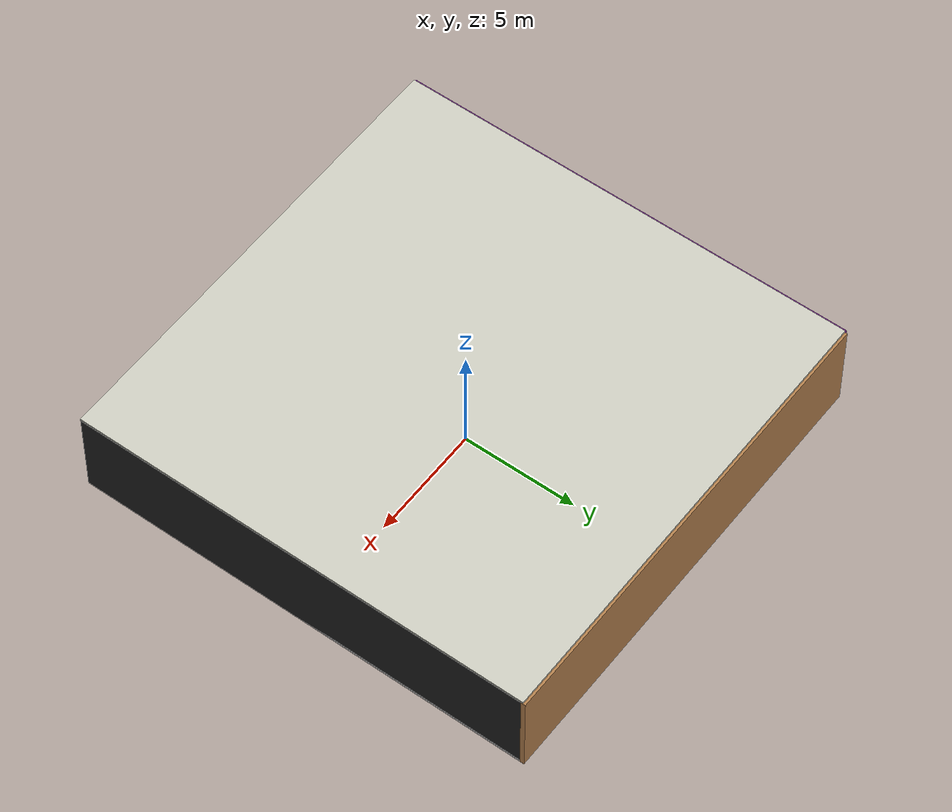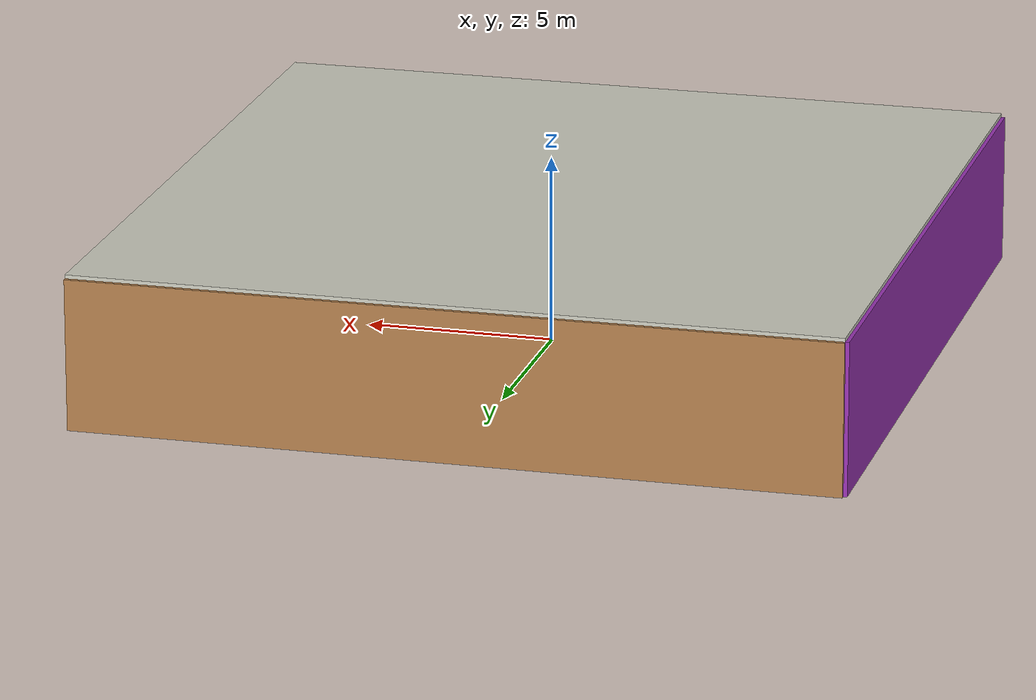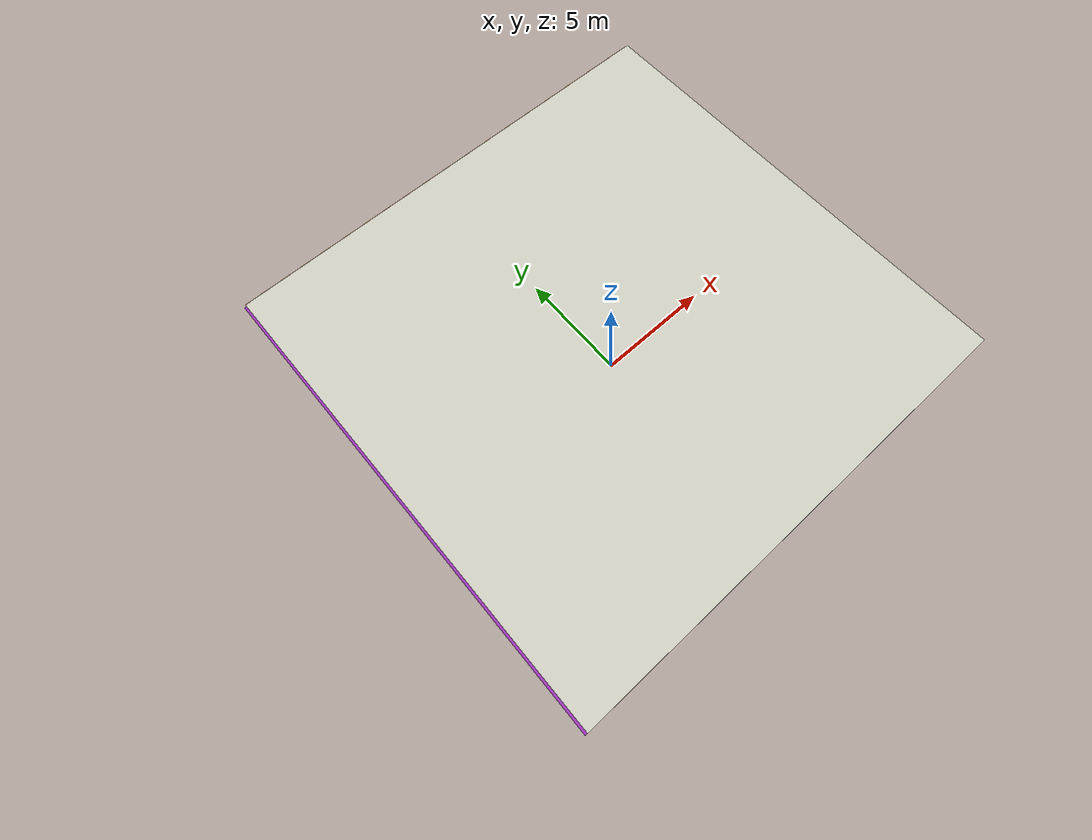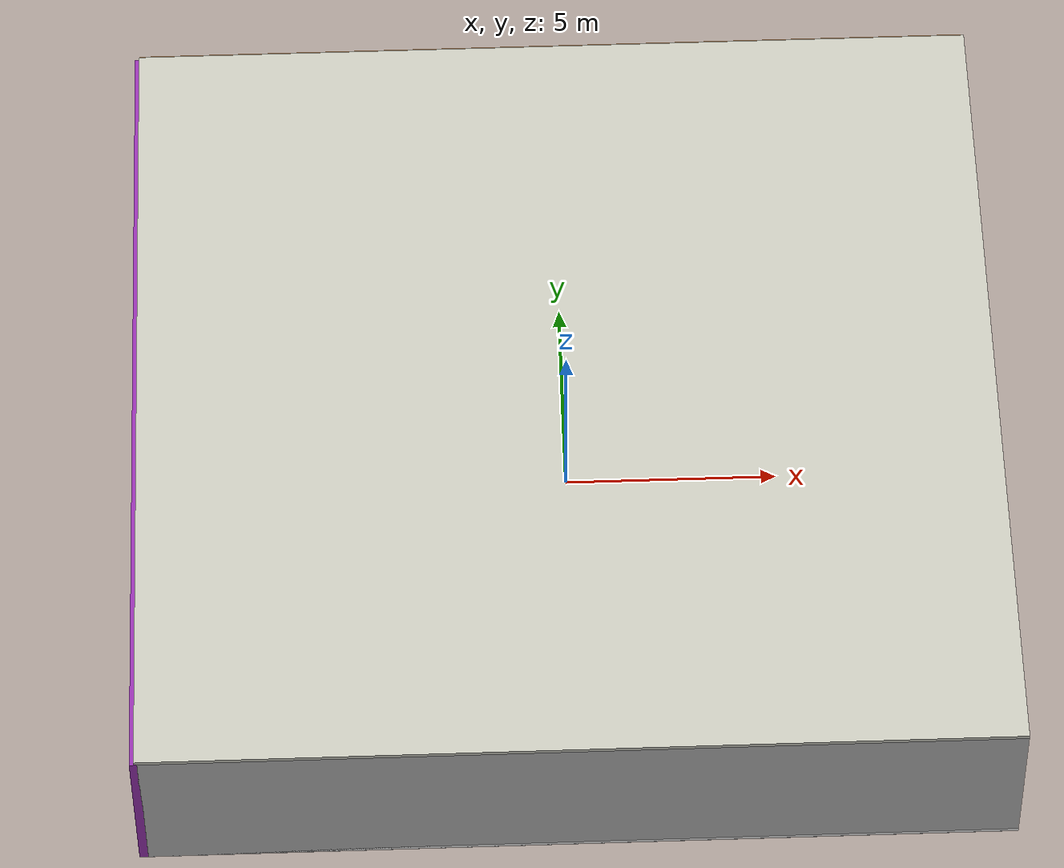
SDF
<sdf version="1.4">
 <world name="default">
  <physics type="ode">
   <max_step_size>0.001</max_step_size>
   <real_time_factor>1</real_time_factor>
   <real_time_update_rate>1000</real_time_update_rate>
   <gravity>0 0 -9.8</gravity>
  </physics>
  <scene><ambient>0.4 0.4 0.4 1</ambient><background>0.7 0.7 0.7 1</background><shadows>1</shadows></scene>
  <model name="Surrounding">
   <static>1</static>
   <link name="Ceiling">
    <collision name="Ceiling_Collision"><geometry><box><size>20 20 0.1</size></box></geometry></collision>
    <visual name="Ceiling_Visual">
     <geometry><box><size>20 20 0.1</size></box></geometry>
     <material>
      <script><uri>file://media/materials/scripts/gazebo.material</uri><name>Gazebo/PaintedWall</name></script>
     </material>
    </visual>
    <pose>0 0 4.05 0 0 0</pose>
   </link>
   <link name="Wall_South">
    <collision name="Wall_South_Collision">
     <geometry><box><size>20 0 4</size></box></geometry>
     <pose>0 0 2 0 -0 0</pose>
    </collision>
    <visual name="Wall_South_Visual">
     <pose>0 0 2 0 -0 0</pose>
     <geometry><box><size>20 0 4</size></box></geometry>
     <material>
      <script><uri>file://media/materials/scripts/gazebo.material</uri><name>Gazebo/Pioneer2Body</name></script>
     </material>
    </visual>
    <velocity_decay><linear>0</linear><angular>0</angular></velocity_decay>
    <pose>0 -10 0 0 -0 0</pose>
   </link>
   <link name="Wall_East">
    <collision name="Wall_21_Collision">
     <geometry><box><size>20 0 4</size></box></geometry>
     <pose>0 0 2 0 -0 0</pose>
    </collision>
    <visual name="Wall_21_Visual">
     <pose>0 0 2 0 -0 0</pose>
     <geometry><box><size>20 0 4</size></box></geometry>
     <material>
      <script><uri>file://media/materials/scripts/gazebo.material</uri><name>Gazebo/Black</name></script>
     </material>
    </visual>
    <velocity_decay><linear>0</linear><angular>0</angular></velocity_decay>
    <pose>10 0 0 0 -0 1.5708</pose>
   </link>
   <link name="Wall_North">
    <collision name="Wall_22_Collision">
     <geometry><box><size>20 0.2 4</size></box></geometry>
     <pose>0 0 2 0 -0 0</pose>
    </collision>
    <visual name="Wall_22_Visual">
     <pose>0 0 2 0 -0 0</pose>
     <geometry><box><size>20 0.2 4</size></box></geometry>
     <material>
      <script><uri>file://media/materials/scripts/gazebo.material</uri><name>Gazebo/WoodPallet</name></script>
     </material>
    </visual>
    <velocity_decay><linear>0</linear><angular>0</angular></velocity_decay>
    <pose>0 10 0 0 -0 0</pose>
   </link>
   <link name="Wall_West">
    <collision name="Wall_23_Collision">
     <geometry><box><size>20 0.2 4</size></box></geometry>
     <pose>0 0 2 0 -0 0</pose>
    </collision>
    <visual name="Wall_23_Visual">
     <pose>0 0 2 0 -0 0</pose>
     <geometry><box><size>20 0.2 4</size></box></geometry>
     <material>
      <script><uri>file://media/materials/scripts/gazebo.material</uri><name>Gazebo/PurpleGlow</name></script>
     </material>
    </visual>
    <velocity_decay><linear>0</linear><angular>0</angular></velocity_decay>
    <pose>-10 0 0 0 0 -1.5708</pose>
   </link>
   <link name="Ground_link">
    <collision name="collision">
     <pose>0 0 .05 0 -0 0</pose>
     <geometry><box><size>20 20 0.1</size></box></geometry>
    </collision>
    <visual name="visual">
     <pose>0 0 .05 0 -0 0</pose>
     <geometry><box><size>20 20 0.1</size></box></geometry>
     <material>
      <script><uri>file://media/materials/scripts/gazebo.material</uri><name>Gazebo/White</name></script>
     </material>
    </visual>
   </link>
   <static>1</static>
  </model>
  <spherical_coordinates>
   <surface_model>EARTH_WGS84</surface_model>
   <latitude_deg>0</latitude_deg>
   <longitude_deg>0</longitude_deg>
   <elevation>0</elevation>
   <heading_deg>0</heading_deg>
  </spherical_coordinates>
  <light name="lightball_0" type="diffuse">
   <diffuse>0.8 0.8 0.8 1</diffuse>
   <specular>0.2 0.2 0.2 1</specular>
   <attenuation>
    <range>100</range>
    <constant>0.7</constant>
    <linear>0.01</linear>
    <quadratic>0.001</quadratic>
   </attenuation>
   <direction>-0.5 0.1 -0.9</direction>
   <pose>-6.47379986051 0.659586108832 0.502544927893 0 0 0</pose>
  </light>
  <light name="lightball_1" type="diffuse">
   <diffuse>0.8 0.8 0.8 1</diffuse>
   <specular>0.2 0.2 0.2 1</specular>
   <attenuation>
    <range>100</range>
    <constant>0.7</constant>
    <linear>0.01</linear>
    <quadratic>0.001</quadratic>
   </attenuation>
   <direction>-0.5 0.1 -0.9</direction>
   <pose>7.62215743326 -2.20083206404 2.64551025094 0 0 0</pose>
  </light>
  <light name="lightball_2" type="diffuse">
   <diffuse>0.8 0.8 0.8 1</diffuse>
   <specular>0.2 0.2 0.2 1</specular>
   <attenuation>
    <range>100</range>
    <constant>0.7</constant>
    <linear>0.01</linear>
    <quadratic>0.001</quadratic>
   </attenuation>
   <direction>-0.5 0.1 -0.9</direction>
   <pose>9.62124207032 -4.22080824348 1.75191120304 0 0 0</pose>
  </light>
  <light name="lightball_3" type="diffuse">
   <diffuse>0.8 0.8 0.8 1</diffuse>
   <specular>0.2 0.2 0.2 1</specular>
   <attenuation>
    <range>100</range>
    <constant>0.7</constant>
    <linear>0.01</linear>
    <quadratic>0.001</quadratic>
   </attenuation>
   <direction>-0.5 0.1 -0.9</direction>
   <pose>0.146542833191 -4.12654160628 1.62145305003 0 0 0</pose>
  </light>
  <light name="lightball_4" type="diffuse">
   <diffuse>0.8 0.8 0.8 1</diffuse>
   <specular>0.2 0.2 0.2 1</specular>
   <attenuation>
    <range>100</range>
    <constant>0.7</constant>
    <linear>0.01</linear>
    <quadratic>0.001</quadratic>
   </attenuation>
   <direction>-0.5 0.1 -0.9</direction>
   <pose>-5.40059043475 9.48939734258 0.916710712868 0 0 0</pose>
  </light>
  <light name="lightball_5" type="diffuse">
   <diffuse>0.8 0.8 0.8 1</diffuse>
   <specular>0.2 0.2 0.2 1</specular>
   <attenuation>
    <range>100</range>
    <constant>0.7</constant>
    <linear>0.01</linear>
    <quadratic>0.001</quadratic>
   </attenuation>
   <direction>-0.5 0.1 -0.9</direction>
   <pose>-2.23910812083 0.818569272788 1.10659292265 0 0 0</pose>
  </light>
  <light name="lightball_6" type="diffuse">
   <diffuse>0.8 0.8 0.8 1</diffuse>
   <specular>0.2 0.2 0.2 1</specular>
   <attenuation>
    <range>100</range>
    <constant>0.7</constant>
    <linear>0.01</linear>
    <quadratic>0.001</quadratic>
   </attenuation>
   <direction>-0.5 0.1 -0.9</direction>
   <pose>0.0557278237139 9.3433328692 3.69304054643 0 0 0</pose>
  </light>
  <light name="lightball_7" type="diffuse">
   <diffuse>0.8 0.8 0.8 1</diffuse>
   <specular>0.2 0.2 0.2 1</specular>
   <attenuation>
    <range>100</range>
    <constant>0.7</constant>
    <linear>0.01</linear>
    <quadratic>0.001</quadratic>
   </attenuation>
   <direction>-0.5 0.1 -0.9</direction>
   <pose>-3.50239316296 9.78345058085 1.61148908374 0 0 0</pose>
  </light>
  <light name="lightball_8" type="diffuse">
   <diffuse>0.8 0.8 0.8 1</diffuse>
   <specular>0.2 0.2 0.2 1</specular>
   <attenuation>
    <range>100</range>
    <constant>0.7</constant>
    <linear>0.01</linear>
    <quadratic>0.001</quadratic>
   </attenuation>
   <direction>-0.5 0.1 -0.9</direction>
   <pose>1.42541242559 -4.81053738387 2.40202021768 0 0 0</pose>
  </light>
  <light name="lightball_9" type="diffuse">
   <diffuse>0.8 0.8 0.8 1</diffuse>
   <specular>0.2 0.2 0.2 1</specular>
   <attenuation>
    <range>100</range>
    <constant>0.7</constant>
    <linear>0.01</linear>
    <quadratic>0.001</quadratic>
   </attenuation>
   <direction>-0.5 0.1 -0.9</direction>
   <pose>-7.19713607889 -5.55221985435 1.77777746297 0 0 0</pose>
  </light>
  <include><uri>model://table</uri><pose>-7.01539025037 -7.10968785288 0 0 0 1.10557821019</pose></include>
  <include><uri>model://cabinet</uri><pose>-8.41437996623 -5.54499501705 0 0 0 0.862887489971</pose></include>
  <include><uri>model://table</uri><pose>-4.85131867731 6.4961652093 0 0 0 2.89705565297</pose></include>
  <include><uri>model://table</uri><pose>-0.550162742006 -3.90251421432 0 0 0 2.51705182343</pose></include>
  <include>
   <uri>model://robocup_3Dsim_goal</uri>
   <pose>4.71201209454 -7.32656925243 0 0 0 2.41322840815</pose>
  </include>
  <include>
   <uri>model://construction_cone</uri>
   <pose>3.98634356044 8.68716343825 0 0 0 0.329238584461</pose>
  </include>
  <include><uri>model://cabinet</uri><pose>7.21907646237 7.5540417196 0 0 0 1.70036996064</pose></include>
 </world>
</sdf>

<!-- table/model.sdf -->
<sdf version="1.5">
  <model name="table">
    <static>true</static>
    <link name="link">
      <collision name="surface">
        <pose>0 0 1.0 0 0 0</pose>
        <geometry>
          <box>
            <size>1.5 0.8 0.03</size>
          </box>
        </geometry>
        <surface>
          <friction>
            <ode>
              <mu>0.6</mu>
              <mu2>0.6</mu2>
            </ode>
          </friction>
        </surface>
      </collision>
      <visual name="visual1">
        <pose>0 0 1.0 0 0 0</pose>
        <geometry>
          <box>
            <size>1.5 0.8 0.03</size>
          </box>
        </geometry>
        <material>
          <script>
            <uri>model://media/materials/scripts/gazebo.material</uri>
            <name>Gazebo/Wood</name>
          </script>
        </material>
      </visual>
      <collision name="front_left_leg">
        <pose>0.68 0.38 0.5 0 0 0</pose>
        <geometry>
          <cylinder>
            <radius>0.02</radius>
            <length>1.0</length>
          </cylinder>
        </geometry>
      </collision>
      <visual name="front_left_leg">
        <pose>0.68 0.38 0.5 0 0 0</pose>
        <geometry>
          <cylinder>
            <radius>0.02</radius>
            <length>1.0</length>
          </cylinder>
        </geometry>
        <material>
          <script>
            <uri>model://media/materials/scripts/gazebo.material</uri>
            <name>Gazebo/Grey</name>
          </script>
        </material>
      </visual>
      <collision name="front_right_leg">
        <pose>0.68 -0.38 0.5 0 0 0</pose>
        <geometry>
          <cylinder>
            <radius>0.02</radius>
            <length>1.0</length>
          </cylinder>
        </geometry>
      </collision>
      <visual name="front_right_leg">
        <pose>0.68 -0.38 0.5 0 0 0</pose>
        <geometry>
          <cylinder>
            <radius>0.02</radius>
            <length>1.0</length>
          </cylinder>
        </geometry>
        <material>
          <script>
            <uri>model://media/materials/scripts/gazebo.material</uri>
            <name>Gazebo/Grey</name>
          </script>
        </material>
      </visual>
      <collision name="back_right_leg">
        <pose>-0.68 -0.38 0.5 0 0 0</pose>
        <geometry>
          <cylinder>
            <radius>0.02</radius>
            <length>1.0</length>
          </cylinder>
        </geometry>
      </collision>
      <visual name="back_right_leg">
        <pose>-0.68 -0.38 0.5 0 0 0</pose>
        <geometry>
          <cylinder>
            <radius>0.02</radius>
            <length>1.0</length>
          </cylinder>
        </geometry>
        <material>
          <script>
            <uri>model://media/materials/scripts/gazebo.material</uri>
            <name>Gazebo/Grey</name>
          </script>
        </material>
      </visual>
      <collision name="back_left_leg">
        <pose>-0.68 0.38 0.5 0 0 0</pose>
        <geometry>
          <cylinder>
            <radius>0.02</radius>
            <length>1.0</length>
          </cylinder>
        </geometry>
      </collision>
      <visual name="back_left_leg">
        <pose>-0.68 0.38 0.5 0 0 0</pose>
        <geometry>
          <cylinder>
            <radius>0.02</radius>
            <length>1.0</length>
          </cylinder>
        </geometry>
        <material>
          <script>
            <uri>model://media/materials/scripts/gazebo.material</uri>
            <name>Gazebo/Grey</name>
          </script>
        </material>
      </visual>
    </link>
  </model>
</sdf>

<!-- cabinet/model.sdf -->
<sdf version="1.5">
  <model name="cabinet">
    <static>true</static>
    <link name="cabinet_bottom_plate">
      <inertial>
        <pose>0 0 -1 0 0 0</pose>
        <inertia>
          <ixx>2.050000</ixx>
          <ixy>0</ixy>
          <ixz>0</ixz>
          <iyy>2.050000</iyy>
          <iyz>0</iyz>
          <izz>2.050000</izz>
        </inertia>
        <mass>25.000000</mass>
      </inertial>
      <collision name="cabinet_bottom_plate_geom">
        <pose>0 0 0.010000 0 0 0</pose>
        <geometry>
          <box>
            <size>0.450000 0.450000 0.020000</size>
          </box>
        </geometry>
      </collision>
      <visual name="cabinet_bottom_plate_geom_visual">
        <pose>0 0 0.010000 0 0 0</pose>
        <geometry>
          <box>
            <size>0.450000 0.450000 0.020000</size>
          </box>
        </geometry>
        <material>
          <script>
            <uri>model://media/materials/scripts/gazebo.material</uri>
            <name>Gazebo/Wood</name>
          </script>
        </material>
      </visual>
      <collision name="cabinet_bottom_plate_geom_cabinet_back_plate">
        <pose>0.235000 0 0.510000 0 0 0</pose>
        <geometry>
          <box>
            <size>0.020000 0.450000 1.020000</size>
          </box>
        </geometry>
      </collision>
      <visual name="cabinet_bottom_plate_geom_cabinet_back_plate_visual">
        <pose>0.235000 0 0.510000 0 0 0</pose>
        <geometry>
          <box>
            <size>0.020000 0.450000 1.020000</size>
          </box>
        </geometry>
        <material>
          <script>
            <uri>model://media/materials/scripts/gazebo.material</uri>
            <name>Gazebo/Wood</name>
          </script>
        </material>
      </visual>
      <collision name="cabinet_bottom_plate_geom_cabinet_left_plate">
        <pose>0 0.235000 0.510000 0 0 0</pose>
        <geometry>
          <box>
            <size>0.450000 0.020000 1.020000</size>
          </box>
        </geometry>
      </collision>
      <visual name="cabinet_bottom_plate_geom_cabinet_left_plate_visual">
        <pose>0 0.235000 0.510000 0 0 0</pose>
        <geometry>
          <box>
            <size>0.450000 0.020000 1.020000</size>
          </box>
        </geometry>
        <material>
          <script>
            <uri>model://media/materials/scripts/gazebo.material</uri>
            <name>Gazebo/Wood</name>
          </script>
        </material>
      </visual>
      <collision name="cabinet_bottom_plate_geom_cabinet_middle_plate">
        <pose>0 0 0.510000 0 0 0</pose>
        <geometry>
          <box>
            <size>0.450000 0.450000 0.020000</size>
          </box>
        </geometry>
      </collision>
      <visual name="cabinet_bottom_plate_geom_cabinet_middle_plate_visual">
        <pose>0 0 0.510000 0 0 0</pose>
        <geometry>
          <box>
            <size>0.450000 0.450000 0.020000</size>
          </box>
        </geometry>
        <material>
          <script>
            <uri>model://media/materials/scripts/gazebo.material</uri>
            <name>Gazebo/Wood</name>
          </script>
        </material>
      </visual>
      <collision name="cabinet_bottom_plate_geom_cabinet_right_plate">
        <pose>0 -0.235000 0.510000 0 0 0</pose>
        <geometry>
          <box>
            <size>0.450000 0.020000 1.020000</size>
          </box>
        </geometry>
      </collision>
      <visual name="cabinet_bottom_plate_geom_cabinet_right_plate_visual">
        <pose>0 -0.235000 0.510000 0 0 0</pose>
        <geometry>
          <box>
            <size>0.450000 0.020000 1.020000</size>
          </box>
        </geometry>
        <material>
          <script>
            <uri>model://media/materials/scripts/gazebo.material</uri>
            <name>Gazebo/Wood</name>
          </script>
        </material>
      </visual>
      <collision name="cabinet_bottom_plate_geom_cabinet_top_plate">
        <pose>0 0 1.010000 0 0 0</pose>
        <geometry>
          <box>
            <size>0.450000 0.450000 0.020000</size>
          </box>
        </geometry>
      </collision>
      <visual name="cabinet_bottom_plate_geom_cabinet_top_plate_visual">
        <pose>0 0 1.010000 0 0 0</pose>
        <geometry>
          <box>
            <size>0.450000 0.450000 0.020000</size>
          </box>
        </geometry>
        <material>
          <script>
            <uri>model://media/materials/scripts/gazebo.material</uri>
            <name>Gazebo/Wood</name>
          </script>
        </material>
      </visual>
    </link>
  </model>
</sdf>

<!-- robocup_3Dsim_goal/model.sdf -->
<sdf version="1.5">
  <model name="robocup_3d_goal">
    <static>true</static>
    <link name="left_post">
      <pose>0 1.05 0.45 0 0 0</pose>
      <collision name="collision">
        <geometry>
          <cylinder>
            <radius>0.05</radius>
            <length>0.9</length>
          </cylinder>
        </geometry>
      </collision>
      <visual name="visual">
        <geometry>
          <cylinder>
            <radius>0.05</radius>
            <length>0.9</length>
          </cylinder>
        </geometry>
        <material>
          <script>
            <uri>file://media/materials/scripts/gazebo.material</uri>
            <name>Gazebo/ZincYellow</name>
          </script>
        </material>
      </visual>
    </link>
    <link name="left_support_horiz_lower">
      <pose>0.30 1.05 0.01 0 0 0</pose>
      <collision name="collision">
        <geometry>
          <box>
            <size>0.50 0.02 0.02</size>
          </box>
        </geometry>
      </collision>
      <visual name="visual">
        <geometry>
          <box>
            <size>0.50 0.02 0.02</size>
          </box>
        </geometry>
        <material>
          <script>
            <uri>file://media/materials/scripts/gazebo.material</uri>
            <name>Gazebo/White</name>
          </script>
        </material>
      </visual>
    </link>
    <link name="left_support_horiz_upper">
      <pose>0.30 1.05 0.79 0 0 0</pose>
      <collision name="collision">
        <geometry>
          <box>
            <size>0.50 0.02 0.02</size>
          </box>
        </geometry>
      </collision>
      <visual name="visual">
        <geometry>
          <box>
            <size>0.50 0.02 0.02</size>
          </box>
        </geometry>
        <material>
          <script>
            <uri>file://media/materials/scripts/gazebo.material</uri>
            <name>Gazebo/White</name>
          </script>
        </material>
      </visual>
    </link>
    <link name="left_support_vertical">
      <pose>0.56 1.05 0.4 0 1.5708 0</pose>
      <collision name="collision">
        <geometry>
          <box>
            <size>0.80 0.02 0.02</size>
          </box>
        </geometry>
      </collision>
      <visual name="visual">
        <geometry>
          <box>
            <size>0.80 0.02 0.02</size>
          </box>
        </geometry>
        <material>
          <script>
            <uri>file://media/materials/scripts/gazebo.material</uri>
            <name>Gazebo/White</name>
          </script>
        </material>
      </visual>
    </link>
    <link name="right_support_horiz_lower">
      <pose>0.30 -1.05 0.01 0 0 0</pose>
      <collision name="collision">
        <geometry>
          <box>
            <size>0.50 0.02 0.02</size>
          </box>
        </geometry>
      </collision>
      <visual name="visual">
        <geometry>
          <box>
            <size>0.50 0.02 0.02</size>
          </box>
        </geometry>
        <material>
          <script>
            <uri>file://media/materials/scripts/gazebo.material</uri>
            <name>Gazebo/White</name>
          </script>
        </material>
      </visual>
    </link>
    <link name="right_support_horiz_upper">
      <pose>0.30 -1.05 0.79 0 0 0</pose>
      <collision name="collision">
        <geometry>
          <box>
            <size>0.50 0.02 0.02</size>
          </box>
        </geometry>
      </collision>
      <visual name="visual">
        <geometry>
          <box>
            <size>0.50 0.02 0.02</size>
          </box>
        </geometry>
        <material>
          <script>
            <uri>file://media/materials/scripts/gazebo.material</uri>
            <name>Gazebo/White</name>
          </script>
        </material>
      </visual>
    </link>
    <link name="right_support_vertical">
      <pose>0.56 -1.05 0.4 0 1.5708 0</pose>
      <collision name="collision">
        <geometry>
          <box>
            <size>0.80 0.02 0.02</size>
          </box>
        </geometry>
      </collision>
      <visual name="visual">
        <geometry>
          <box>
            <size>0.80 0.02 0.02</size>
          </box>
        </geometry>
        <material>
          <script>
            <uri>file://media/materials/scripts/gazebo.material</uri>
            <name>Gazebo/White</name>
          </script>
        </material>
      </visual>
    </link>
    <link name="center_support_horiz_lower">
      <pose>0.56 0 0.01 0 1.5708 0</pose>
      <collision name="collision">
        <geometry>
          <box>
            <size>0.02 2.08 0.02</size>
          </box>
        </geometry>
      </collision>
      <visual name="visual">
        <geometry>
          <box>
            <size>0.02 2.08 0.02</size>
          </box>
        </geometry>
        <material>
          <script>
            <uri>file://media/materials/scripts/gazebo.material</uri>
            <name>Gazebo/White</name>
          </script>
        </material>
      </visual>
    </link>
    <link name="center_support_horiz_upper">
      <pose>0.56 0 0.79 0 1.5708 0</pose>
      <collision name="collision">
        <geometry>
          <box>
            <size>0.02 2.08 0.02</size>
          </box>
        </geometry>
      </collision>
      <visual name="visual">
        <geometry>
          <box>
            <size>0.02 2.08 0.02</size>
          </box>
        </geometry>
        <material>
          <script>
            <uri>file://media/materials/scripts/gazebo.material</uri>
            <name>Gazebo/White</name>
          </script>
        </material>
      </visual>
    </link>
    <link name="right_post">
      <pose>0 -1.05 0.45 0 0 0</pose>
      <collision name="collision">
        <geometry>
          <cylinder>
            <radius>0.05</radius>
            <length>0.9</length>
          </cylinder>
        </geometry>
      </collision>
      <visual name="visual">
        <geometry>
          <cylinder>
            <radius>0.05</radius>
            <length>0.9</length>
          </cylinder>
        </geometry>
        <material>
          <script>
            <uri>file://media/materials/scripts/gazebo.material</uri>
            <name>Gazebo/ZincYellow</name>
          </script>
        </material>
      </visual>
    </link>
    <link name="crossbar">
      <pose>0 0 0.85 1.57 1.57 0</pose>
      <collision name="collision">
        <geometry>
          <cylinder>
            <radius>0.05</radius>
            <length>2.0</length>
          </cylinder>
        </geometry>
      </collision>
      <visual name="visual">
        <geometry>
          <cylinder>
            <radius>0.05</radius>
            <length>2.0</length>
          </cylinder>
        </geometry>
        <material>
          <script>
            <uri>file://media/materials/scripts/gazebo.material</uri>
            <name>Gazebo/ZincYellow</name>
          </script>
        </material>
      </visual>
    </link>
    <link name="center_net">
      <pose>0.56 0 0.40 0 0 0</pose>
      <collision name="collision">
        <geometry>
          <box>
            <size>0.01 2.1 0.80</size>
          </box>
        </geometry>
      </collision>
      <visual name="visual">
        <geometry>
          <box>
            <size>0.01 2.1 0.80</size>
          </box>
        </geometry>
        <material>
          <script>
            <uri>model://../model_source/models/robocup09_spl_field/materials/scripts/</uri>
            <uri>model://../model_source/models/robocup09_spl_field/materials/textures/</uri>
            <name>RoboCup/Net</name>
          </script>
        </material>
      </visual>
    </link>
    <link name="left_net">
      <pose>0.30 1.05 0.40 0 0 0</pose>
      <collision name="collision">
        <geometry>
          <box>
            <size>0.50 0.01 0.76</size>
          </box>
        </geometry>
      </collision>
      <visual name="visual">
        <geometry>
          <box>
            <size>0.50 0.01 0.76</size>
          </box>
        </geometry>
        <material>
          <script>
            <uri>model://../model_source/models/robocup09_spl_field/materials/scripts/</uri>
            <uri>model://../model_source/models/robocup09_spl_field/materials/textures/</uri>
            <name>RoboCup/Net</name>
          </script>
        </material>
      </visual>
    </link>
    <link name="right_net">
      <pose>0.30 -1.05 0.40 0 0 0</pose>
      <collision name="collision">
        <geometry>
          <box>
            <size>0.50 0.01 0.76</size>
          </box>
        </geometry>
      </collision>
      <visual name="visual">
        <geometry>
          <box>
            <size>0.50 0.01 0.76</size>
          </box>
        </geometry>
        <material>
          <script>
            <uri>model://../model_source/models/robocup09_spl_field/materials/scripts/</uri>
            <uri>model://../model_source/models/robocup09_spl_field/materials/textures/</uri>
            <name>RoboCup/Net</name>
          </script>
        </material>
      </visual>
    </link>
  </model>
</sdf>

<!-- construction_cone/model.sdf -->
<sdf version="1.5">
  <model name="Construction Cone">
    <link name="link">
      <collision name="collision">
        <geometry>
          <mesh>
            <scale>10 10 10</scale>
            <uri>file://isr-testbed/construction_cone/meshes/construction_cone.dae</uri>
          </mesh>
        </geometry>
      </collision>
      <visual name="visual">
        <geometry>
          <mesh>
            <scale>10 10 10</scale>
            <uri>file://isr-testbed/construction_cone/meshes/construction_cone.dae</uri>
          </mesh>
        </geometry>
      </visual>
    </link>
  </model>
</sdf>
